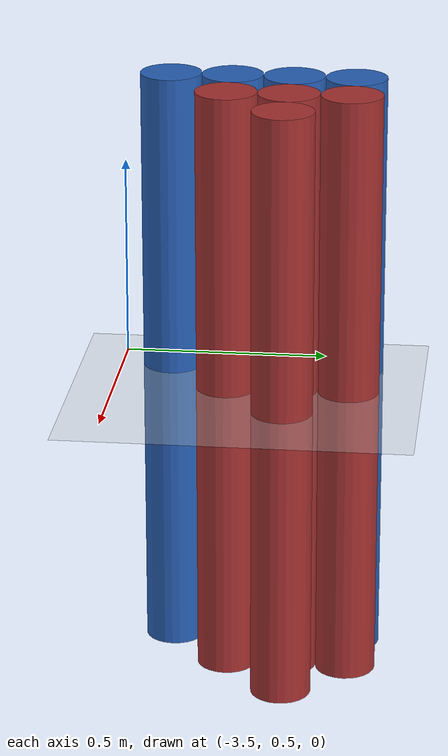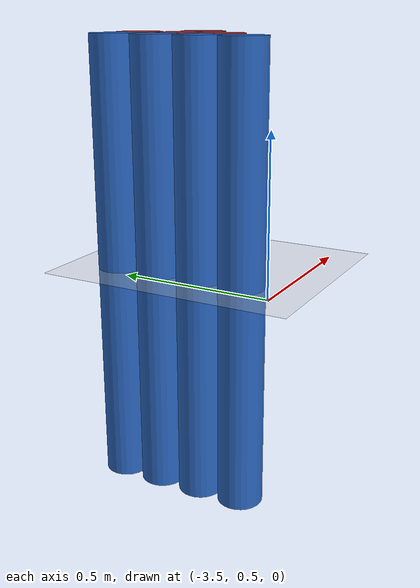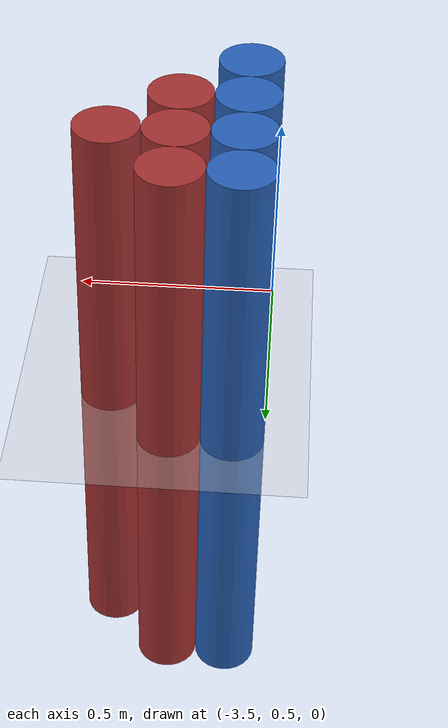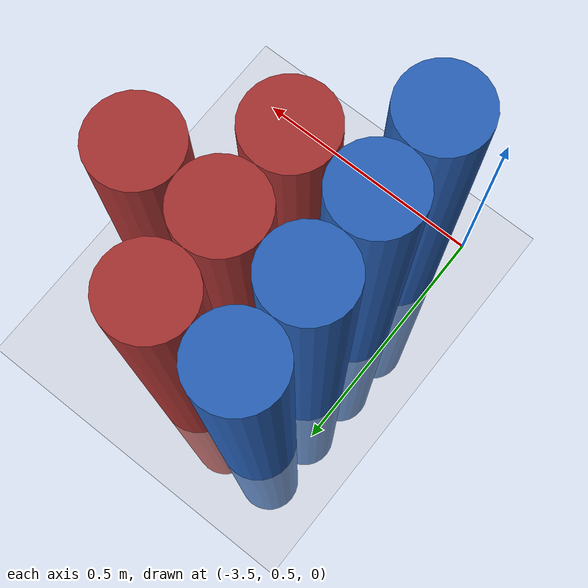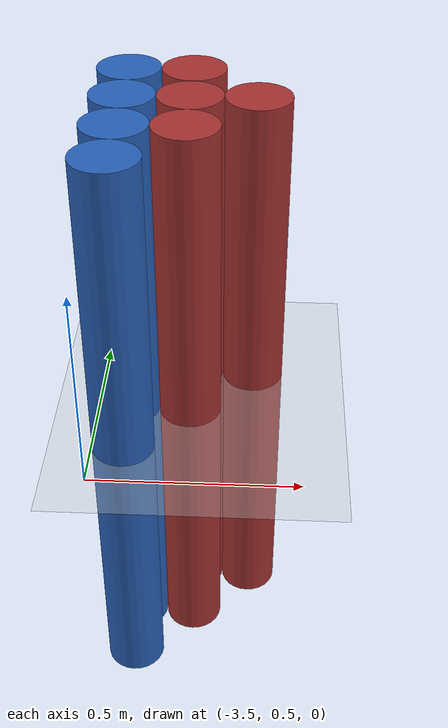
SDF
<sdf version="1.6">
 <world name="default">
  <model name="ground_plane">
   <static>1</static>
   <link name="link">
    <collision name="collision">
     <geometry><plane><normal>0 0 1</normal><size>100 100</size></plane></geometry>
     <surface><friction><ode><mu>100</mu><mu2>50</mu2></ode></friction></surface>
    </collision>
    <visual name="visual">
     <cast_shadows>0</cast_shadows>
     <geometry><plane><normal>0 0 1</normal><size>100 100</size></plane></geometry>
     <material>
      <script><uri>file://media/materials/scripts/gazebo.material</uri><name>Gazebo/Grey</name></script>
     </material>
    </visual>
   </link>
  </model>
  <model name="unit_cylinder_123">
   <static>1</static>
   <pose>-3.425000 0.625000 0.000000 0.000000 0.000000 0.000000</pose>
   <link name="link">
    <inertial>
     <mass>1</mass>
     <inertia><ixx>0.145833</ixx><ixy>0</ixy><ixz>0</ixz><iyy>0.145833</iyy><iyz>0</iyz><izz>0.125</izz></inertia>
    </inertial>
    <collision name="collision">
     <geometry><cylinder><radius>0.075000</radius><length>1.5</length></cylinder></geometry>
    </collision>
    <visual name="visual">
     <geometry><cylinder><radius>0.075000</radius><length>1.5</length></cylinder></geometry>
     <material>
      <ambient>0.152000 0.379000 0.720000 1</ambient>
      <diffuse>0.152000 0.379000 0.720000 1</diffuse>
     </material>
     <material>
      <script><name>Gazebo/Grey</name><uri>file://media/materials/scripts/gazebo.material</uri></script>
     </material>
    </visual>
   </link>
  </model>
  <model name="unit_cylinder_125">
   <static>1</static>
   <pose>-3.425000 0.775000 0.000000 0.000000 0.000000 0.000000</pose>
   <link name="link">
    <inertial>
     <mass>1</mass>
     <inertia><ixx>0.145833</ixx><ixy>0</ixy><ixz>0</ixz><iyy>0.145833</iyy><iyz>0</iyz><izz>0.125</izz></inertia>
    </inertial>
    <collision name="collision">
     <geometry><cylinder><radius>0.075000</radius><length>1.5</length></cylinder></geometry>
    </collision>
    <visual name="visual">
     <geometry><cylinder><radius>0.075000</radius><length>1.5</length></cylinder></geometry>
     <material>
      <ambient>0.152000 0.379000 0.720000 1</ambient>
      <diffuse>0.152000 0.379000 0.720000 1</diffuse>
     </material>
     <material>
      <script><name>Gazebo/Grey</name><uri>file://media/materials/scripts/gazebo.material</uri></script>
     </material>
    </visual>
   </link>
  </model>
  <model name="unit_cylinder_127">
   <static>1</static>
   <pose>-3.425000 0.925000 0.000000 0.000000 0.000000 0.000000</pose>
   <link name="link">
    <inertial>
     <mass>1</mass>
     <inertia><ixx>0.145833</ixx><ixy>0</ixy><ixz>0</ixz><iyy>0.145833</iyy><iyz>0</iyz><izz>0.125</izz></inertia>
    </inertial>
    <collision name="collision">
     <geometry><cylinder><radius>0.075000</radius><length>1.5</length></cylinder></geometry>
    </collision>
    <visual name="visual">
     <geometry><cylinder><radius>0.075000</radius><length>1.5</length></cylinder></geometry>
     <material>
      <ambient>0.152000 0.379000 0.720000 1</ambient>
      <diffuse>0.152000 0.379000 0.720000 1</diffuse>
     </material>
     <material>
      <script><name>Gazebo/Grey</name><uri>file://media/materials/scripts/gazebo.material</uri></script>
     </material>
    </visual>
   </link>
  </model>
  <model name="unit_cylinder_129">
   <static>1</static>
   <pose>-3.425000 1.075000 0.000000 0.000000 0.000000 0.000000</pose>
   <link name="link">
    <inertial>
     <mass>1</mass>
     <inertia><ixx>0.145833</ixx><ixy>0</ixy><ixz>0</ixz><iyy>0.145833</iyy><iyz>0</iyz><izz>0.125</izz></inertia>
    </inertial>
    <collision name="collision">
     <geometry><cylinder><radius>0.075000</radius><length>1.5</length></cylinder></geometry>
    </collision>
    <visual name="visual">
     <geometry><cylinder><radius>0.075000</radius><length>1.5</length></cylinder></geometry>
     <material>
      <ambient>0.152000 0.379000 0.720000 1</ambient>
      <diffuse>0.152000 0.379000 0.720000 1</diffuse>
     </material>
     <material>
      <script><name>Gazebo/Grey</name><uri>file://media/materials/scripts/gazebo.material</uri></script>
     </material>
    </visual>
   </link>
  </model>
  <model name="unit_cylinder_225">
   <static>1</static>
   <pose>-3.425000 0.625000 0.000000 0.000000 0.000000 0.000000</pose>
   <link name="link">
    <inertial>
     <mass>1</mass>
     <inertia><ixx>0.145833</ixx><ixy>0</ixy><ixz>0</ixz><iyy>0.145833</iyy><iyz>0</iyz><izz>0.125</izz></inertia>
    </inertial>
    <collision name="collision">
     <geometry><cylinder><radius>0.075000</radius><length>1.5</length></cylinder></geometry>
    </collision>
    <visual name="visual">
     <geometry><cylinder><radius>0.075000</radius><length>1.5</length></cylinder></geometry>
     <material>
      <ambient>0.152000 0.379000 0.720000 1</ambient>
      <diffuse>0.152000 0.379000 0.720000 1</diffuse>
     </material>
     <material>
      <script><name>Gazebo/Grey</name><uri>file://media/materials/scripts/gazebo.material</uri></script>
     </material>
    </visual>
   </link>
  </model>
  <model name="unit_cylinder_226">
   <static>1</static>
   <pose>-3.425000 0.775000 0.000000 0.000000 0.000000 0.000000</pose>
   <link name="link">
    <inertial>
     <mass>1</mass>
     <inertia><ixx>0.145833</ixx><ixy>0</ixy><ixz>0</ixz><iyy>0.145833</iyy><iyz>0</iyz><izz>0.125</izz></inertia>
    </inertial>
    <collision name="collision">
     <geometry><cylinder><radius>0.075000</radius><length>1.5</length></cylinder></geometry>
    </collision>
    <visual name="visual">
     <geometry><cylinder><radius>0.075000</radius><length>1.5</length></cylinder></geometry>
     <material>
      <ambient>0.152000 0.379000 0.720000 1</ambient>
      <diffuse>0.152000 0.379000 0.720000 1</diffuse>
     </material>
     <material>
      <script><name>Gazebo/Grey</name><uri>file://media/materials/scripts/gazebo.material</uri></script>
     </material>
    </visual>
   </link>
  </model>
  <model name="unit_cylinder_227">
   <static>1</static>
   <pose>-3.425000 0.925000 0.000000 0.000000 0.000000 0.000000</pose>
   <link name="link">
    <inertial>
     <mass>1</mass>
     <inertia><ixx>0.145833</ixx><ixy>0</ixy><ixz>0</ixz><iyy>0.145833</iyy><iyz>0</iyz><izz>0.125</izz></inertia>
    </inertial>
    <collision name="collision">
     <geometry><cylinder><radius>0.075000</radius><length>1.5</length></cylinder></geometry>
    </collision>
    <visual name="visual">
     <geometry><cylinder><radius>0.075000</radius><length>1.5</length></cylinder></geometry>
     <material>
      <ambient>0.152000 0.379000 0.720000 1</ambient>
      <diffuse>0.152000 0.379000 0.720000 1</diffuse>
     </material>
     <material>
      <script><name>Gazebo/Grey</name><uri>file://media/materials/scripts/gazebo.material</uri></script>
     </material>
    </visual>
   </link>
  </model>
  <model name="unit_cylinder_228">
   <static>1</static>
   <pose>-3.425000 1.075000 0.000000 0.000000 0.000000 0.000000</pose>
   <link name="link">
    <inertial>
     <mass>1</mass>
     <inertia><ixx>0.145833</ixx><ixy>0</ixy><ixz>0</ixz><iyy>0.145833</iyy><iyz>0</iyz><izz>0.125</izz></inertia>
    </inertial>
    <collision name="collision">
     <geometry><cylinder><radius>0.075000</radius><length>1.5</length></cylinder></geometry>
    </collision>
    <visual name="visual">
     <geometry><cylinder><radius>0.075000</radius><length>1.5</length></cylinder></geometry>
     <material>
      <ambient>0.152000 0.379000 0.720000 1</ambient>
      <diffuse>0.152000 0.379000 0.720000 1</diffuse>
     </material>
     <material>
      <script><name>Gazebo/Grey</name><uri>file://media/materials/scripts/gazebo.material</uri></script>
     </material>
    </visual>
   </link>
  </model>
  <model name="unit_cylinder_266">
   <static>1</static>
   <pose>-3.275000 0.775000 0.000000 0.000000 0.000000 0.000000</pose>
   <link name="link">
    <inertial>
     <mass>1</mass>
     <inertia><ixx>0.145833</ixx><ixy>0</ixy><ixz>0</ixz><iyy>0.145833</iyy><iyz>0</iyz><izz>0.125</izz></inertia>
    </inertial>
    <collision name="collision">
     <geometry><cylinder><radius>0.075000</radius><length>1.5</length></cylinder></geometry>
    </collision>
    <visual name="visual">
     <geometry><cylinder><radius>0.075000</radius><length>1.5</length></cylinder></geometry>
     <material>
      <ambient>0.648000 0.192000 0.192000 1</ambient>
      <diffuse>0.648000 0.192000 0.192000 1</diffuse>
     </material>
     <material>
      <script><name>Gazebo/Grey</name><uri>file://media/materials/scripts/gazebo.material</uri></script>
     </material>
    </visual>
   </link>
  </model>
  <model name="unit_cylinder_267">
   <static>1</static>
   <pose>-3.275000 0.925000 0.000000 0.000000 0.000000 0.000000</pose>
   <link name="link">
    <inertial>
     <mass>1</mass>
     <inertia><ixx>0.145833</ixx><ixy>0</ixy><ixz>0</ixz><iyy>0.145833</iyy><iyz>0</iyz><izz>0.125</izz></inertia>
    </inertial>
    <collision name="collision">
     <geometry><cylinder><radius>0.075000</radius><length>1.5</length></cylinder></geometry>
    </collision>
    <visual name="visual">
     <geometry><cylinder><radius>0.075000</radius><length>1.5</length></cylinder></geometry>
     <material>
      <ambient>0.648000 0.192000 0.192000 1</ambient>
      <diffuse>0.648000 0.192000 0.192000 1</diffuse>
     </material>
     <material>
      <script><name>Gazebo/Grey</name><uri>file://media/materials/scripts/gazebo.material</uri></script>
     </material>
    </visual>
   </link>
  </model>
  <model name="unit_cylinder_268">
   <static>1</static>
   <pose>-3.275000 1.075000 0.000000 0.000000 0.000000 0.000000</pose>
   <link name="link">
    <inertial>
     <mass>1</mass>
     <inertia><ixx>0.145833</ixx><ixy>0</ixy><ixz>0</ixz><iyy>0.145833</iyy><iyz>0</iyz><izz>0.125</izz></inertia>
    </inertial>
    <collision name="collision">
     <geometry><cylinder><radius>0.075000</radius><length>1.5</length></cylinder></geometry>
    </collision>
    <visual name="visual">
     <geometry><cylinder><radius>0.075000</radius><length>1.5</length></cylinder></geometry>
     <material>
      <ambient>0.648000 0.192000 0.192000 1</ambient>
      <diffuse>0.648000 0.192000 0.192000 1</diffuse>
     </material>
     <material>
      <script><name>Gazebo/Grey</name><uri>file://media/materials/scripts/gazebo.material</uri></script>
     </material>
    </visual>
   </link>
  </model>
  <model name="unit_cylinder_278">
   <static>1</static>
   <pose>-3.125000 0.925000 0.000000 0.000000 0.000000 0.000000</pose>
   <link name="link">
    <inertial>
     <mass>1</mass>
     <inertia><ixx>0.145833</ixx><ixy>0</ixy><ixz>0</ixz><iyy>0.145833</iyy><iyz>0</iyz><izz>0.125</izz></inertia>
    </inertial>
    <collision name="collision">
     <geometry><cylinder><radius>0.075000</radius><length>1.5</length></cylinder></geometry>
    </collision>
    <visual name="visual">
     <geometry><cylinder><radius>0.075000</radius><length>1.5</length></cylinder></geometry>
     <material>
      <ambient>0.648000 0.192000 0.192000 1</ambient>
      <diffuse>0.648000 0.192000 0.192000 1</diffuse>
     </material>
     <material>
      <script><name>Gazebo/Grey</name><uri>file://media/materials/scripts/gazebo.material</uri></script>
     </material>
    </visual>
   </link>
  </model>
 </world>
</sdf>
